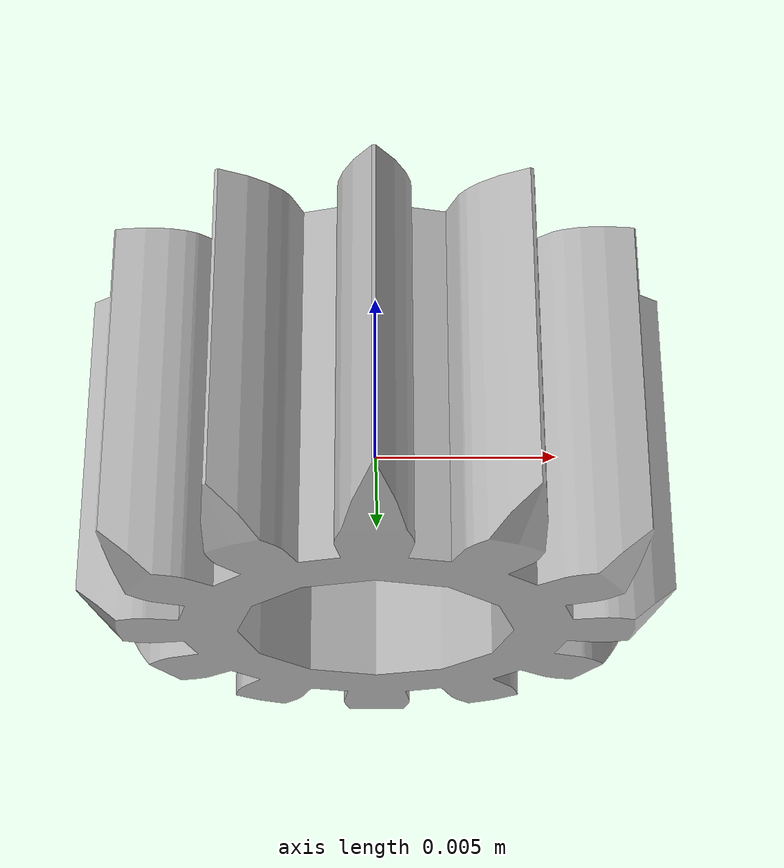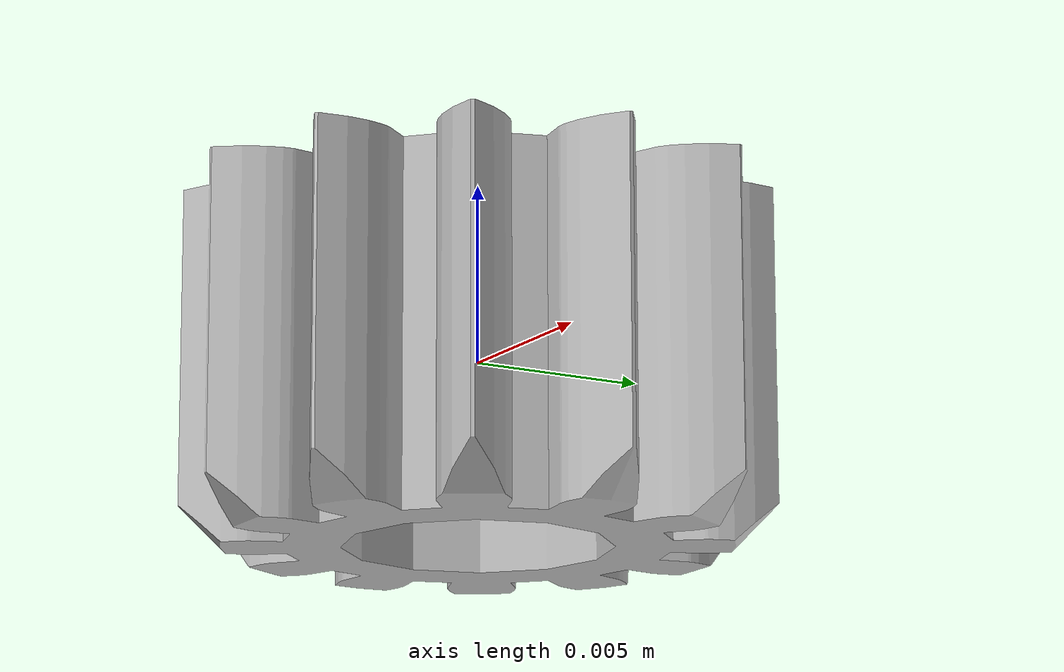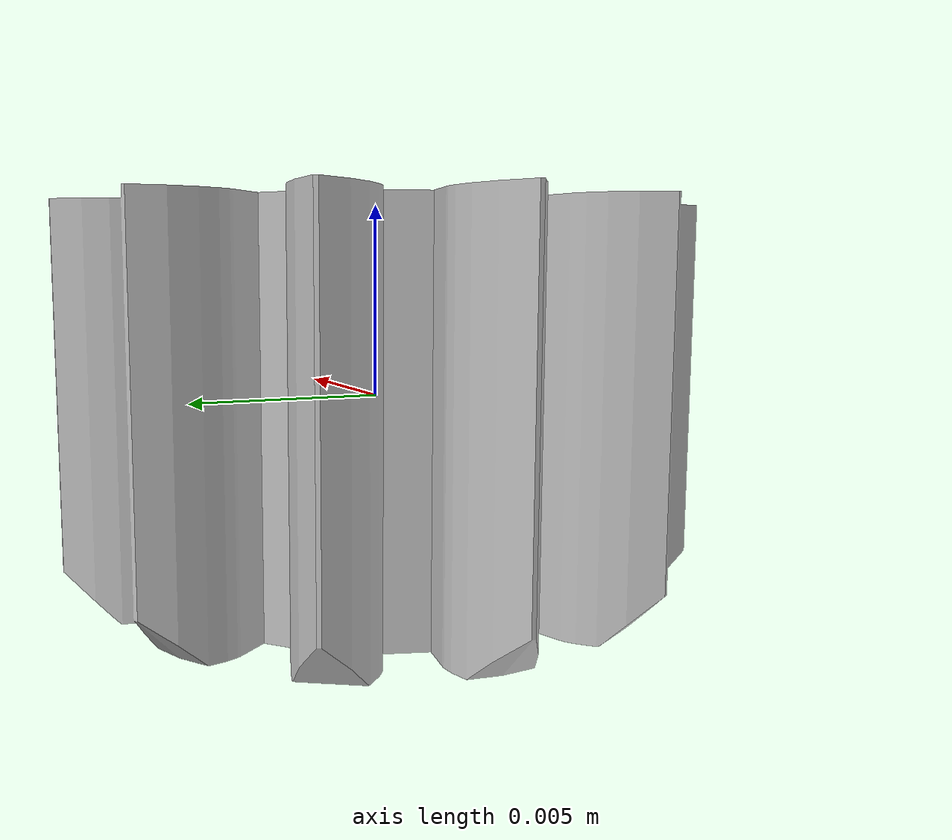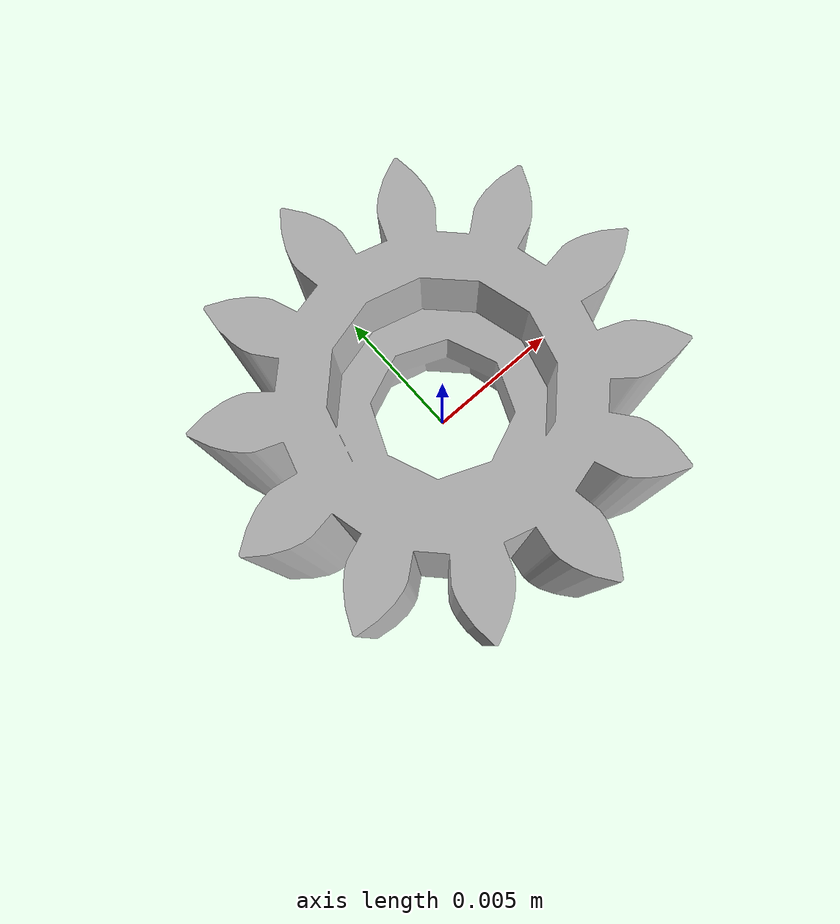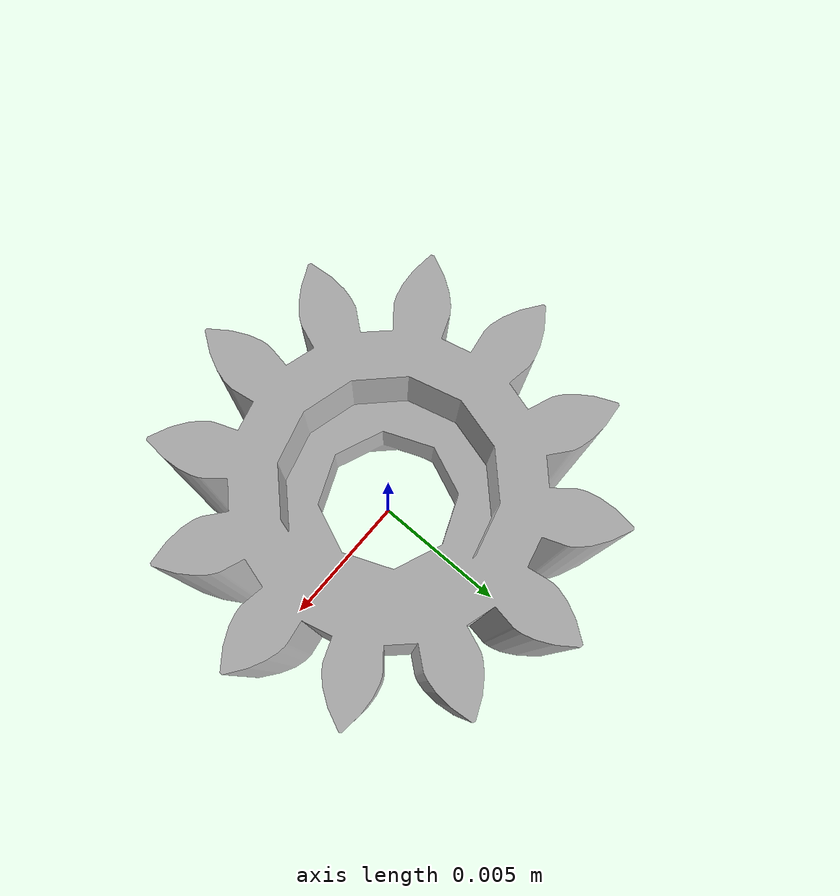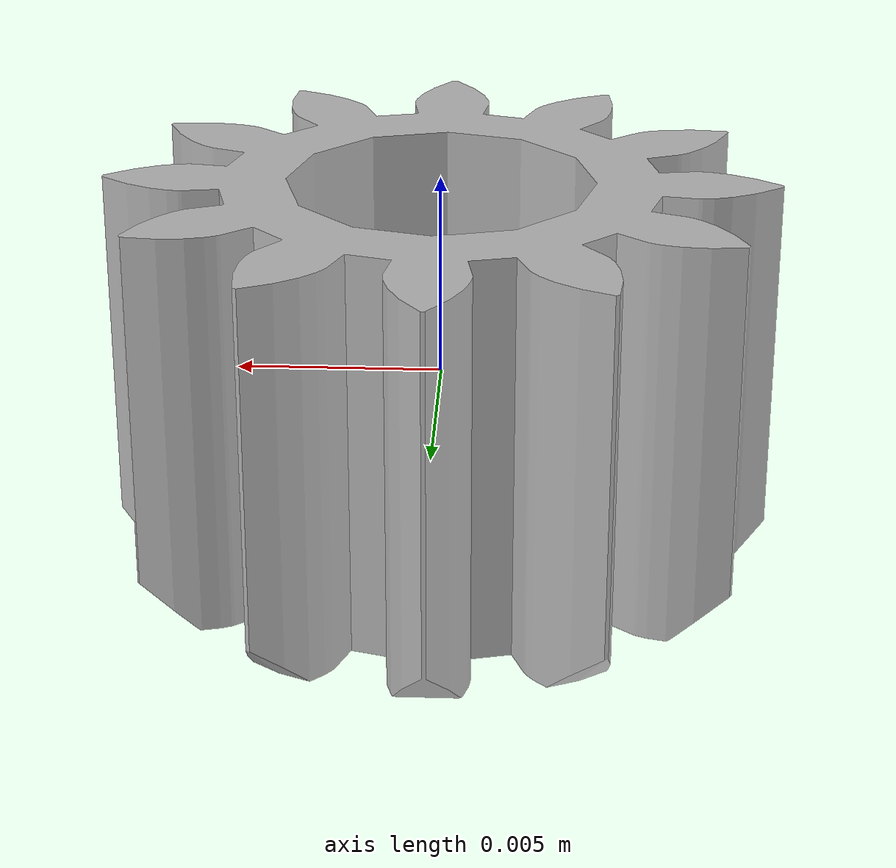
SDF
<?xml version="1.0" ?>
<sdf version="1.5">
  <model name="planet">
    <static>false</static>
    <link name="link">
      <collision name="collision">
        <geometry>
          <mesh>
            <scale>1 1 1</scale>
            <uri>model://Nema/planet/planet.dae</uri>
          </mesh>
        </geometry>
      </collision>
      <visual name="visual">
        <geometry>
          <mesh>
            <scale>1 1 1</scale>
            <uri>model://Nema/planet/planet.dae</uri>
          </mesh>
        </geometry>
      </visual>
    </link>
  </model>
</sdf>
